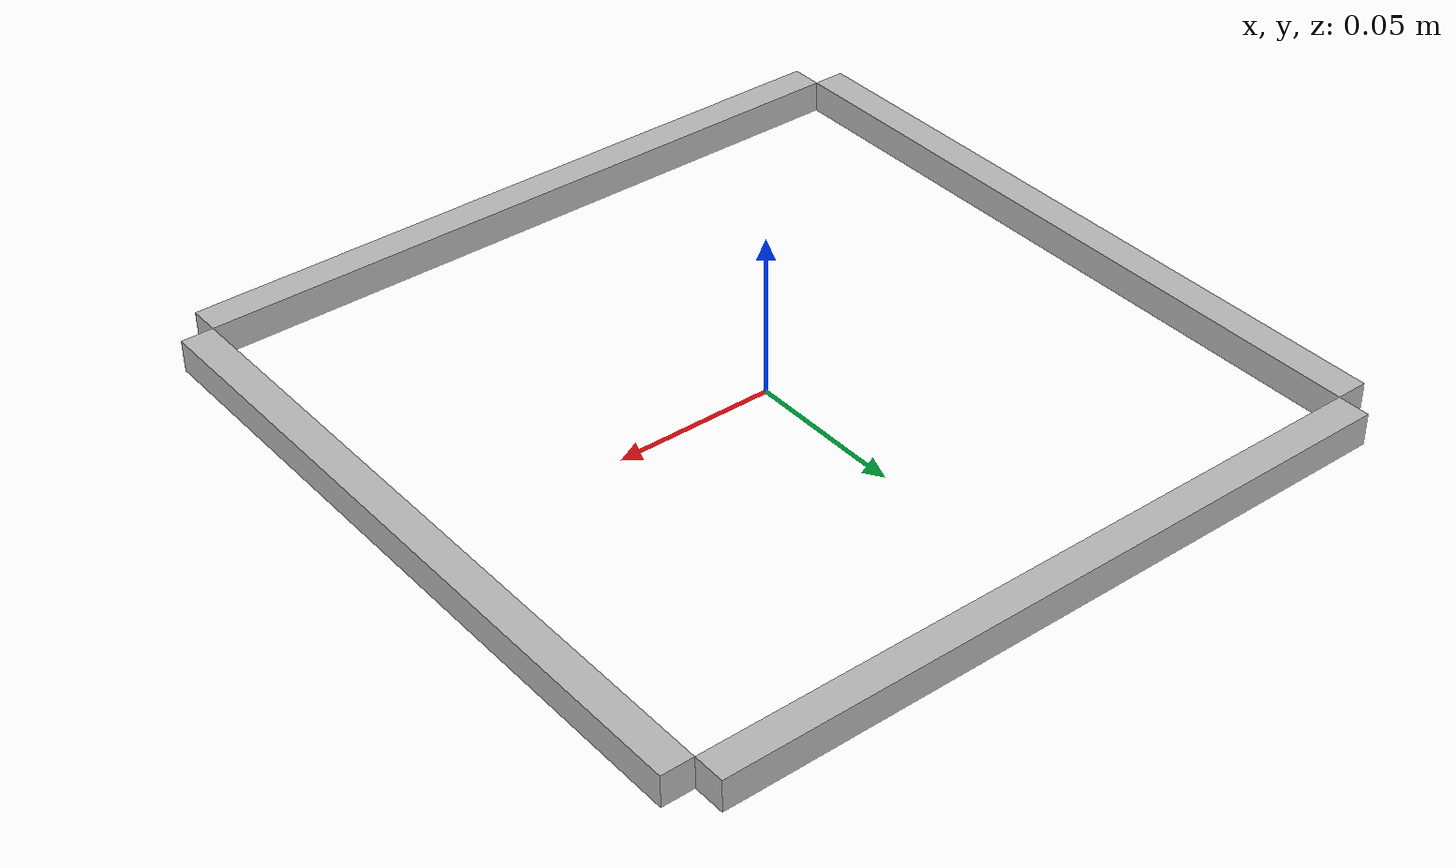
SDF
<?xml version="1.0" ?>
<sdf version="1.4">

 <model name="fixer_ar07">
         <static>true</static>
         <link name="fixer">
            <pose>-0.115 0.000000 0.005 0.000000 0.000000 0.000000</pose>
            <inertial>
               <mass>.1</mass>
               <inertia>
                  <ixx>0.05</ixx>
                  <ixy>0.0</ixy>
                  <iyy>0.05</iyy>
                  <ixz>0.0</ixz>
                  <iyz>0.0</iyz>
                  <izz>0.05</izz>
               </inertia>
            </inertial>
            <collision name="fixer">
               <surface>
                  <friction>
                     <ode>
                        <mu>100000.0</mu>
                        <mu2>100000.0</mu2>
                        <slip1>0.0</slip1>
                        <slip2>0.0</slip2>
                     </ode>
                  </friction>
               </surface>
               <geometry>
                  <box>
                     <size>0.01 0.22  0.01</size>
                  </box>
               </geometry>
            </collision>
            <visual name="visual">
               <geometry>
                  <box>
                     <size> 0.01 0.22 0.01</size>
                  </box>
               </geometry>
            </visual>
         </link>
         <link name="fixr">
            <pose> 0.000000 -0.115 0.005 0.000000 0.000000 0.000000</pose>
            <inertial>
               <mass>.1</mass>
               <inertia>
                  <ixx>0.05</ixx>
                  <ixy>0.0</ixy>
                  <iyy>0.05</iyy>
                  <ixz>0.0</ixz>
                  <iyz>0.0</iyz>
                  <izz>0.05</izz>
               </inertia>
            </inertial>
            <collision name="fixer">
               <surface>
                  <friction>
                     <ode>
                        <mu>100000.0</mu>
                        <mu2>100000.0</mu2>
                        <slip1>0.0</slip1>
                        <slip2>0.0</slip2>
                     </ode>
                  </friction>
               </surface>
               <geometry>
                  <box>
                     <size>0.22 0.01   0.01</size>
                  </box>
               </geometry>
            </collision>
            <visual name="visual">
               <geometry>
                  <box>
                     <size> 0.22 0.01 0.01</size>
                  </box>
               </geometry>
            </visual>
         </link>

         <link name="fixefr">
            <pose>0.115 0.000000 0.005 0.000000 0.000000 0.000000</pose>
            <inertial>
               <mass>.1</mass>
               <inertia>
                  <ixx>0.05</ixx>
                  <ixy>0.0</ixy>
                  <iyy>0.05</iyy>
                  <ixz>0.0</ixz>
                  <iyz>0.0</iyz>
                  <izz>0.05</izz>
               </inertia>
            </inertial>
            <collision name="fixer">
               <surface>
                  <friction>
                     <ode>
                        <mu>100000.0</mu>
                        <mu2>100000.0</mu2>
                        <slip1>0.0</slip1>
                        <slip2>0.0</slip2>
                     </ode>
                  </friction>
               </surface>
               <geometry>
                  <box>
                     <size>0.01 0.22  0.01</size>
                  </box>
               </geometry>
            </collision>
            <visual name="visual">
               <geometry>
                  <box>
                     <size> 0.01 0.22 0.01</size>
                  </box>
               </geometry>
            </visual>
         </link>
         <link name="fqixr">
            <pose> 0.000000 0.115 0.005 0.000000 0.000000 0.000000</pose>
            <inertial>
               <mass>.1</mass>
               <inertia>
                  <ixx>0.05</ixx>
                  <ixy>0.0</ixy>
                  <iyy>0.05</iyy>
                  <ixz>0.0</ixz>
                  <iyz>0.0</iyz>
                  <izz>0.05</izz>
               </inertia>
            </inertial>
            <collision name="fixer">
               <surface>
                  <friction>
                     <ode>
                        <mu>100000.0</mu>
                        <mu2>100000.0</mu2>
                        <slip1>0.0</slip1>
                        <slip2>0.0</slip2>
                     </ode>
                  </friction>
               </surface>
               <geometry>
                  <box>
                     <size>0.22 0.01   0.01</size>
                  </box>
               </geometry>
            </collision>
            <visual name="visual">
               <geometry>
                  <box>
                     <size> 0.22 0.01 0.01</size>
                  </box>
               </geometry>
            </visual>
         </link>

      </model>
</sdf>
